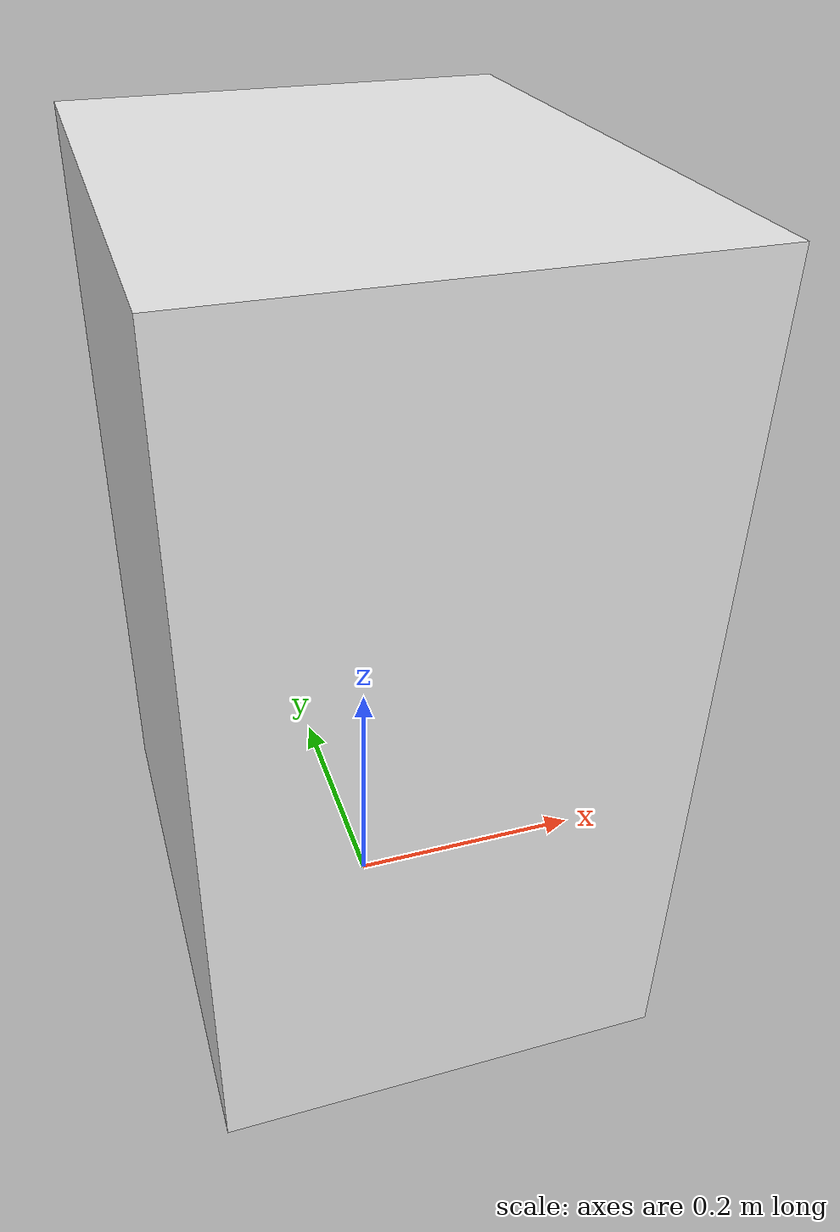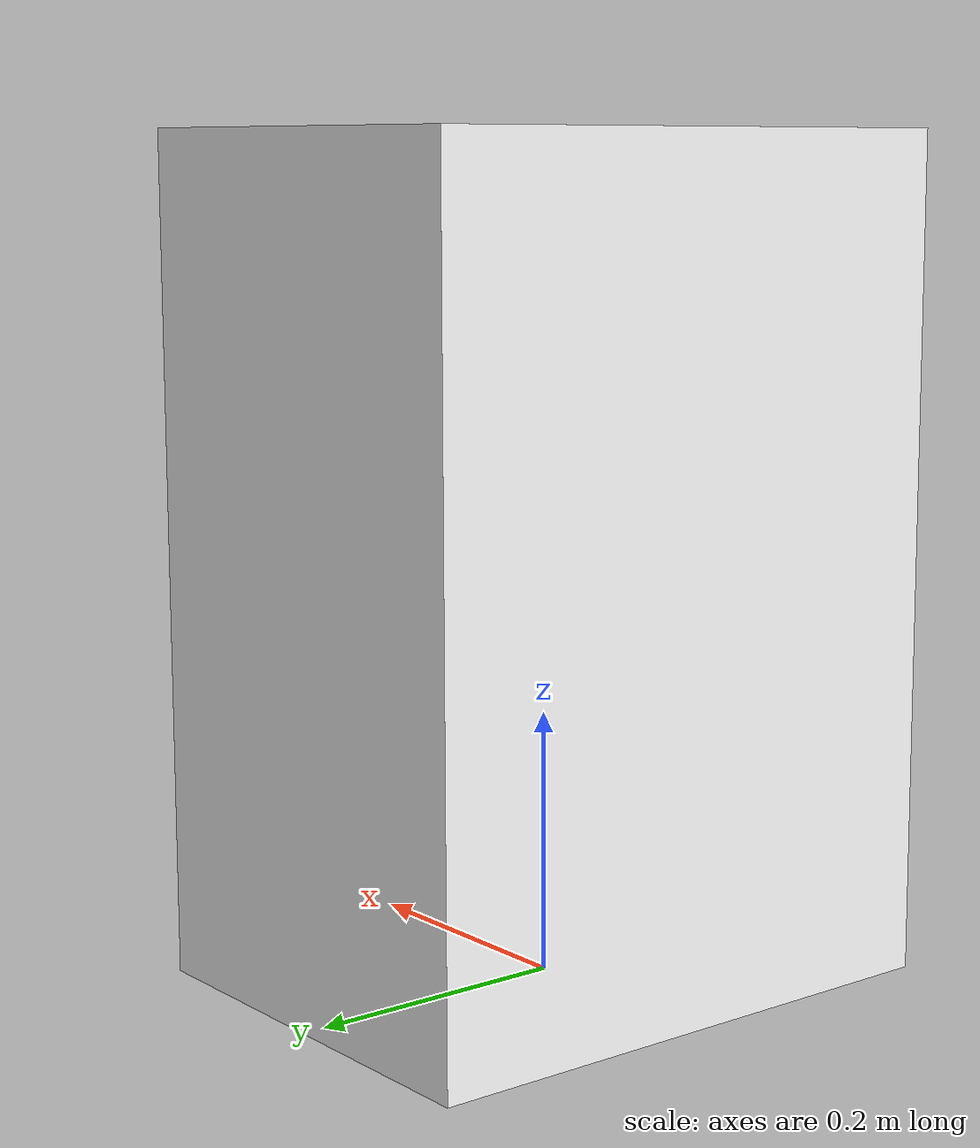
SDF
<?xml version="1.0"?>
<sdf version="1.6">
  <model name="rgo2015/bedstand">
    <link name="1_link">
      <collision name="1_col">
        <geometry>
          <box>
            <size>0.34 0.435 0.63</size>
          </box>
        </geometry>
      </collision>
      <visual name="1_vis">
        <geometry>
          <box>
            <size>0.34 0.435 0.63</size>
          </box>
        </geometry>
        <material>
          <ambient>0.9 0.9 0.9 1</ambient>
        </material>
      </visual>
      <pose>0.0 0.0 0.315 0 0 0</pose>
    </link>
    <static>true</static>
  </model>
</sdf>
